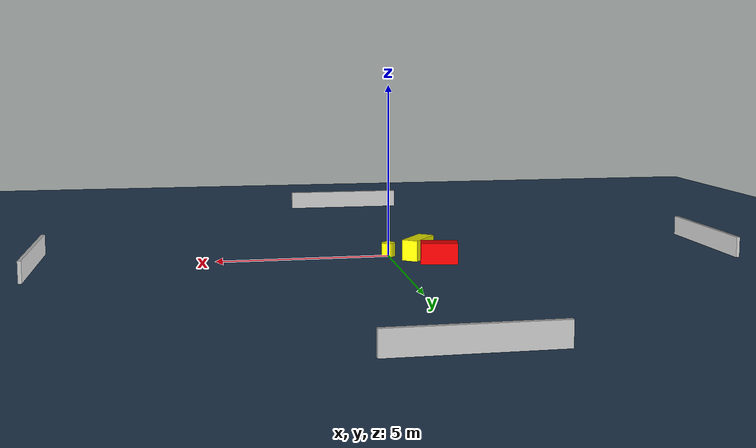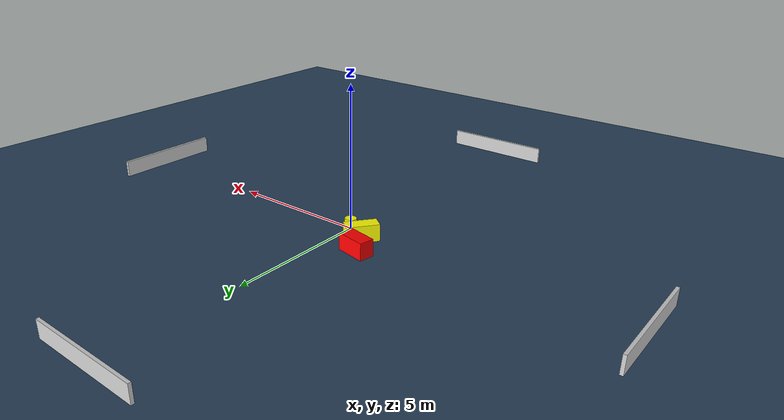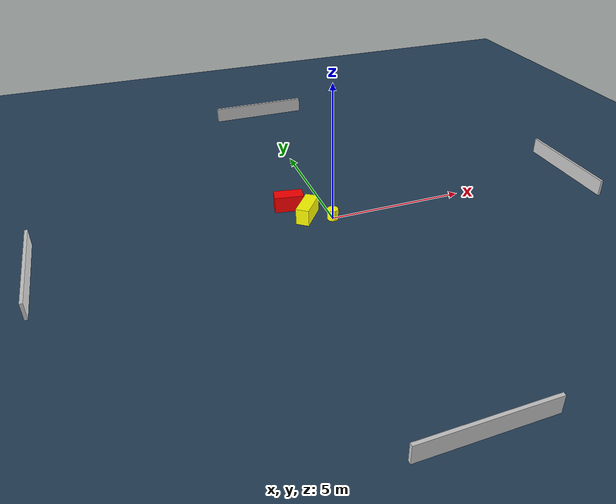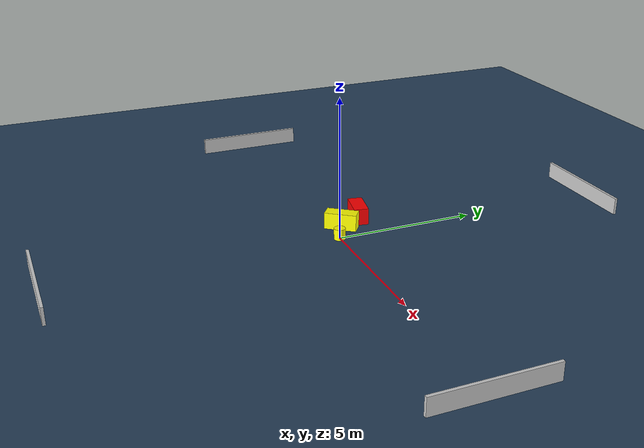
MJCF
<?xml version="1.0" ?>
<mujoco model="generated_environment">
  <option timestep="0.01" integrator="RK4" cone="elliptic"/>
  <default>
    <geom density="1"/>
  </default>
  <asset>
    <texture builtin="gradient" height="3072" name="skybox" rgb1="0.3 0.5 0.7" rgb2="0 0 0" type="skybox" width="512"/>
    <texture builtin="checker" height="300" name="groundplane" rgb1="0.2 0.3 0.4" rgb2="0.1 0.2 0.3" type="2d" width="300"/>
    <material name="groundplane" reflectance="0.2" texrepeat="5 5" texture="groundplane"/>
  </asset>
  <worldbody>
    <light dir="0 0 -1" directional="true" pos="0 0 1.5"/>
    <geom condim="3" friction="0.5 0.005 0.001" material="groundplane" name="floor" pos="0 0 0" size="0 0 0.05" type="plane"/>
    <body name="walls">
      <geom name="wall_1" condim="4" pos="-10.0 0.0 0.3" rgba="0.800000011920929 0.800000011920929 0.800000011920929 1.0" size="0.05 2.0 0.3" type="box"/>
      <geom name="wall_2" condim="4" pos="10.0 0.0 0.3" rgba="0.800000011920929 0.800000011920929 0.800000011920929 1.0" size="0.05 2.0 0.3" type="box"/>
      <geom name="wall_3" condim="4" pos="0.0 -10.0 0.3" rgba="0.800000011920929 0.800000011920929 0.800000011920929 1.0" size="2.0 0.05 0.3" type="box"/>
      <geom name="wall_4" condim="4" pos="0.0 10.0 0.3" rgba="0.800000011920929 0.800000011920929 0.800000011920929 1.0" size="2.0 0.05 0.3" type="box"/>
    </body>
    <body name="robot">
      <joint name="joint_x" type="slide" pos="0 0 0" axis="1 0 0"/>
      <joint name="joint_y" type="slide" pos="0 0 0" axis="0 1 0"/>
      <geom name="robot" type="cylinder" pos="0.0 0.0 0.2" size="0.2 0.2 0.0" mass="5.0" friction="1.0 0.005 0.0001" condim="4" rgba="1.0 1.0 0.0 1.0"/>
    </body>
    <body name="obstacle_1_movable">
      <geom name="obstacle_1_movable" condim="4" pos="-0.8039583263545647 0.4155317417726627 0.3" euler="0 0 323.06974460310914" friction="0.0 0.005 0.001" rgba="1.0 1.0 0.0 1.0" size="0.2353582184814461 0.5669418671821106 0.3" type="box" mass="0.1"/>
      <joint type="free"/>
    </body>
    <body name="obstacle_2_static">
      <geom name="obstacle_2_static" condim="4" pos="-1.244512902376026 1.2358783994861675 0.3" euler="0 0 259.46839523545754" friction="0.0 0.005 0.001" rgba="1.0 0.0 0.0 1.0" size="0.2608504925028009 0.5229541285102959 0.3" type="box"/>
    </body>
  </worldbody>
  <actuator>
    <motor name="actuator_x" joint="joint_x" gear="1" ctrlrange="-1 1"/>
    <motor name="actuator_y" joint="joint_y" gear="1" ctrlrange="-1 1"/>
  </actuator>
</mujoco>
